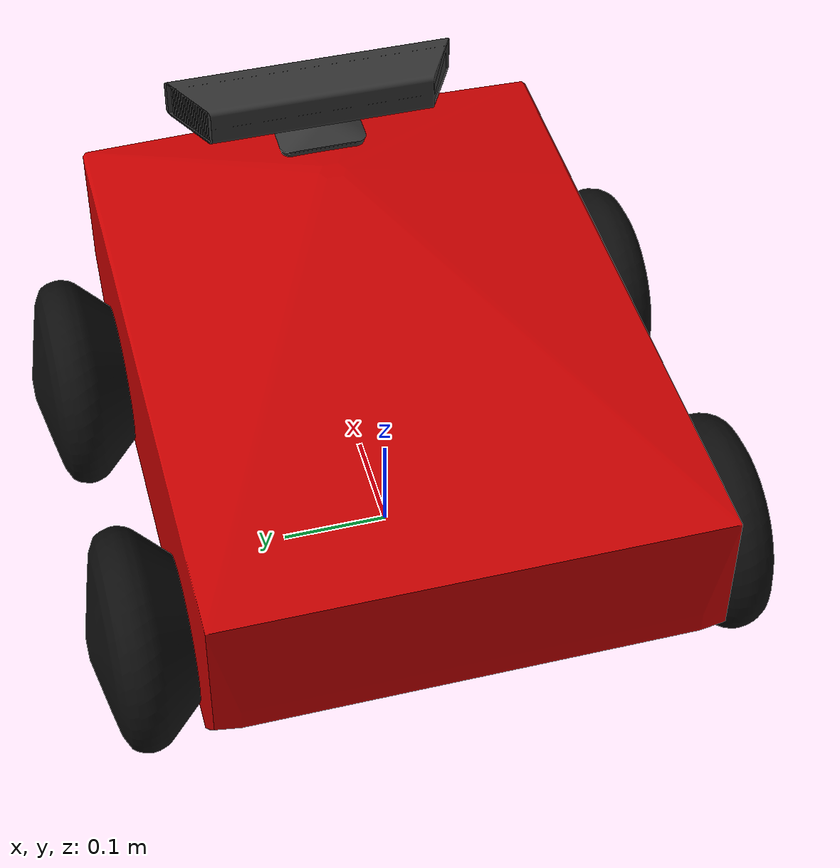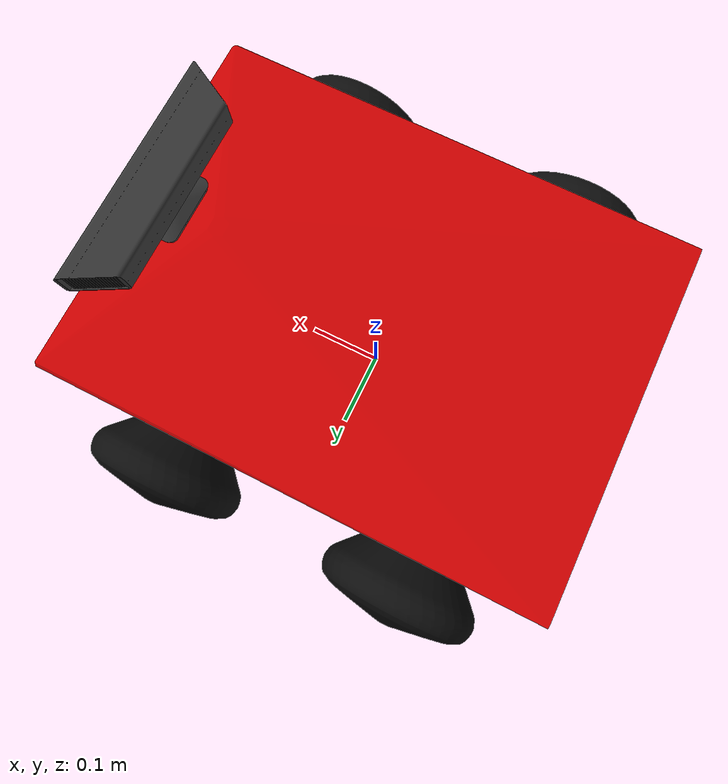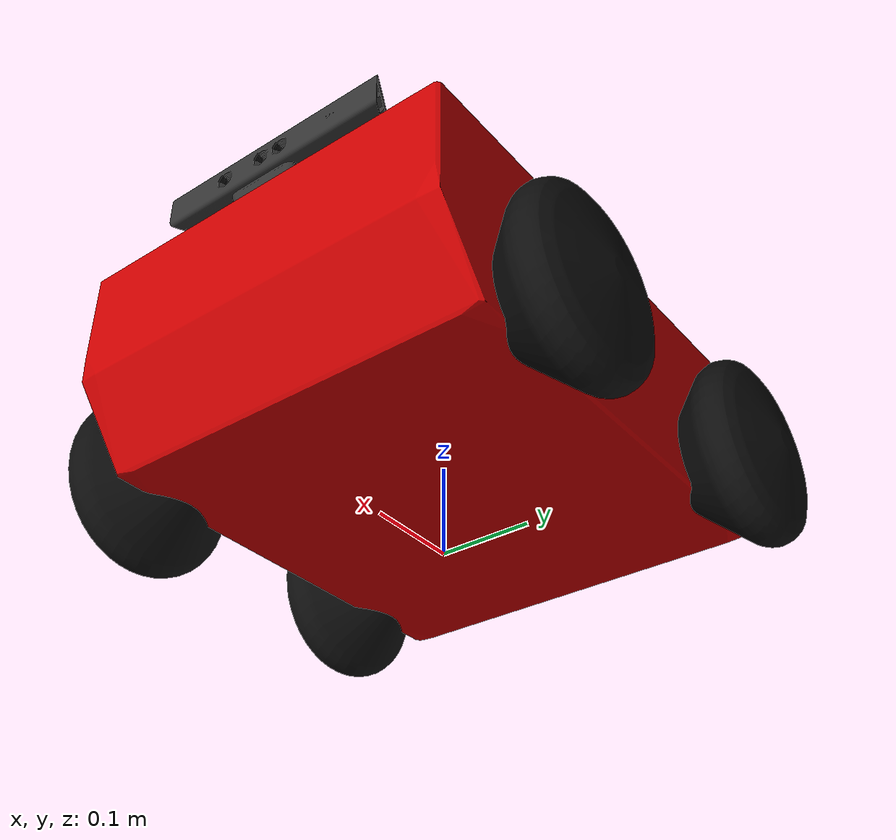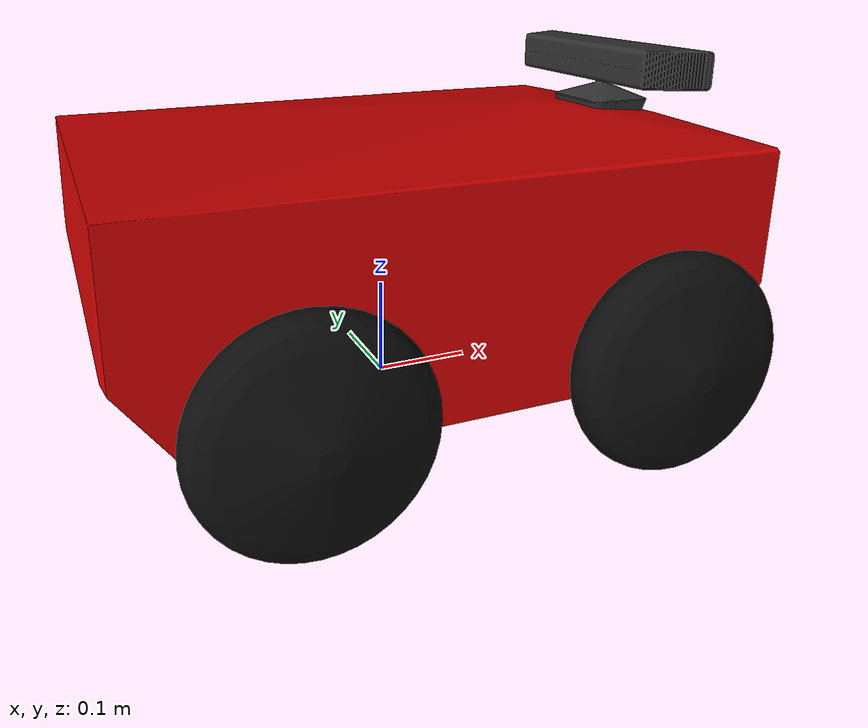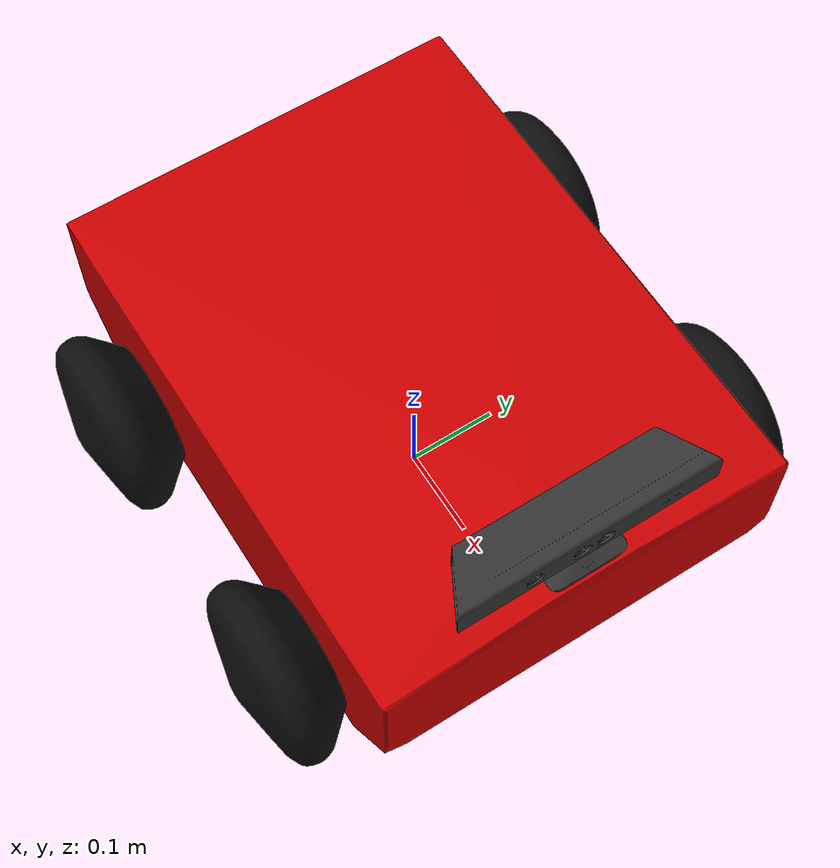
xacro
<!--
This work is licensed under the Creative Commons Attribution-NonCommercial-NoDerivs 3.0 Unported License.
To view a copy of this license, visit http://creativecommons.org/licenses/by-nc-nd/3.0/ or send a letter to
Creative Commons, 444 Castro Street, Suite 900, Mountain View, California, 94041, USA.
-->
<?xml version="1.0"?>

<robot xmlns:xacro="http://ros.org/wiki/xacro" name="canyonero">

		<xacro:include filename="$(find canyonero_description)/urdf/canyonero_properties.urdf.xacro"/>"
		<xacro:include filename="$(find canyonero_description)/urdf/canyonero_base.urdf.xacro"/>
		<xacro:include filename="$(find canyonero_description)/urdf/sensors/canyonero_kinect.urdf.xacro"/>
		<xacro:include filename="$(find canyonero_description)/urdf/sensors/canyonero_imu.urdf.xacro"/>
		<xacro:include filename="$(find canyonero_gazebo)/urdf/canyonero.gazebo.xacro"/>

		<!-- Base -->
		<xacro:wheeled_base name="base"/>

		<!-- 3D sensor -->
		<xacro:sensor_kinect parent="base_link"/>

		<!-- IMU -->
		<xacro:imu_sensor parent="base_link"/>

		<!-- Gazebo -->
		<xacro:canyonero_robot_gazebo/>

</robot>

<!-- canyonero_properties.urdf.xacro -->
<robot xmlns:xacro="http://ros.org/wiki/xacro">

	<!-- common properties -->
	<xacro:property name="PI"	value="3.1415926535897931"/>
	<material name="Red">
    <color rgba="0.8 0.0 0.0 1.0"/>
  </material>
  <material name="Black">
    <color rgba="0.05 0.05 0.05 1.0"/>
  </material>
  <material name="DarkGrey">
   <color rgba="0.2 0.2 0.2 1.0"/>
 </material>

	<!-- base properties -->
	<!-- robot's elevation from the ground -->
	<xacro:property name="rob_pos_Z" value="0.167"/>
	<!-- wheel properties -->
	<xacro:property name="wheel_pos_X" value="0.162"/>
	<xacro:property name="wheel_pos_Y" value="0.165"/>
	<xacro:property name="wheel_pos_Z" value="0.068"/>
	<xacro:property name="wheel_torque" value="1.0"/>
	<xacro:property name="wheel_velocity" value="3.0"/>
	<xacro:property name="wheel_radius" value="0.20"/>

	<!-- kinect properties -->
	<!-- kinect position at the robot -->
	<xacro:property name="cam_pos_X" value="0.262" />
	<xacro:property name="cam_pos_Y" value="0.0" />
	<xacro:property name="cam_pos_Z" value="0.141" />
	<xacro:property name="cam_or_R" value="${PI / 2}" />
	<xacro:property name="cam_or_P" value="0.0" />
	<xacro:property name="cam_or_Y" value="${PI / 2}" />
	<!-- kinect cam position at the kinect itself -->
	<xacro:property name="cam_px" value="0.029" />
	<xacro:property name="cam_py" value="-0.01" />
	<xacro:property name="cam_pz" value="0.019" />
	<xacro:property name="cam_or" value="0.0" />
	<xacro:property name="cam_op" value="0.0" />
	<xacro:property name="cam_oy" value="0.0" />

	<!-- imu properties -->
	<xacro:property name="imu_pos_X" value="0.1885"/>
	<xacro:property name="imu_pos_Y" value="0.0"/>
	<xacro:property name="imu_pos_Z" value="0.108"/>
	<xacro:property name="imu_or_R" value="0.0"/>
	<xacro:property name="imu_or_P" value="0.0"/>
	<xacro:property name="imu_or_Y" value="${-PI / 2}"/>

</robot>

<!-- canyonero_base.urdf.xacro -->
<robot xmlns:xacro="http://ros.org/wiki/xacro">

	<xacro:include filename="$(find canyonero_description)/urdf/wheels/canyonero_wheel.urdf.xacro"/>

	<xacro:macro name= "wheeled_base" params = "name">
	<!-- BASE-FOOTPRINT -->
		<!-- base_footprint is a fictitious link(frame) that is on the ground right below base_link origin, navigation stack depends on this frame -->
		<link name = "${name}_footprint"/>

		<joint name = "${name}_footprint_joint" type = "fixed">
			<parent link = "${name}_footprint"/>
			<child link = "${name}_link"/>
			<origin xyz = "0 0 ${rob_pos_Z}" rpy = "0 0 0"/>
		</joint>

		<!-- BASE-LINK -->
	    <!--Actual body/chassis of the robot-->
		<link name = "${name}_link">
			<visual>
				<origin xyz = "0 0 0" rpy = "0 0 0"/>
				<geometry>
					<mesh filename = "package://canyonero_description/meshes/canyonero_plates.stl"/>
				</geometry>
				<material name="Red"/>
			</visual>
			<collision>
	      		<origin xyz = "0 0 0" rpy = "0 0 0"/>
	      		<geometry>
	        		<mesh filename = "package://canyonero_description/meshes/canyonero_plates_collision.stl"/>
	      		</geometry>
	    	</collision>
			<inertial>
	      		<origin xyz="0.023661 -0.000069 -0.036285" rpy="0 0 0" />
	      		<mass value="10"/>
	      		<inertia ixx="0.27658267" ixy="0.0" ixz="-0.02663389"
	               		 iyy="0.38926449" iyz="0.0"
	               		 izz="0.57775046"/>
	    </inertial>
		</link>

		<gazebo reference="${name}_link">
      <material value="Gazebo/Red"/>
    </gazebo>

		<!-- Wheels -->
	    <xacro:wheel sideX = "front" sideY = "left" positionX = "1.0" positionY = "1.0" reflect = "-1.0" axis_z = "1" parent = "${name}" torque="${wheel_torque}" velocity="${wheel_velocity}" radius="${wheel_radius}" />
	    <xacro:wheel sideX = "front" sideY = "right" positionX = "1.0" positionY = "-1.0" reflect = "1.0" axis_z = "-1" parent = "${name}" torque="${wheel_torque}" velocity="${wheel_velocity}" radius="${wheel_radius}"/>
	    <xacro:wheel sideX = "rear" sideY = "left" positionX = "-1.0" positionY = "1.0" reflect = "-1.0" axis_z = "1" parent = "${name}" torque="${wheel_torque}" velocity="${wheel_velocity}" radius="${wheel_radius}"/>
	    <xacro:wheel sideX = "rear" sideY = "right" positionX = "-1.0" positionY = "-1.0" reflect = "1.0" axis_z = "-1" parent = "${name}" torque="${wheel_torque}" velocity="${wheel_velocity}" radius="${wheel_radius}"/>

	</xacro:macro>

</robot>

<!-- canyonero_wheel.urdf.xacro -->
<robot xmlns:xacro = "http://ros.org/wiki/xacro">

	<xacro:macro name="wheel" params="sideY sideX positionY positionX reflect axis_z parent torque velocity radius">
	    <link name="wheel_${sideX}_${sideY}_link">
	    	<visual>
	        	<origin xyz = "0 0 0" rpy = "0 ${-PI / 2} 0"/>
	        	<geometry>
	          		<mesh filename="package://canyonero_description/meshes/canyonero_wheel.stl"/>
	        	</geometry>
	        	<material name="Black"/>
	      	</visual>
		    <inertial>
		    	<origin xyz="0.0 0.0 0.102638" rpy="0 0 0"/>
		        <mass value="1.419"/>
		        <inertia ixx="0.00305" ixy="0.0" ixz="0.0"
				        		 iyy="0.00305" iyz="0.0"
				             izz="0.00512"/>

		    </inertial>
	      	<collision>
	        	<origin xyz="0 0 0" rpy="0 ${-PI / 2} 0"/>
	        	<geometry>
	          		<mesh filename="package://canyonero_description/meshes/canyonero_wheel_collision.stl"/>
	        	</geometry>
	      	</collision>
	    </link>

	    <joint name="wheel_${sideX}_${sideY}_joint" type="continuous">
	    	<parent link="${parent}_link"/>
	      	<child link="wheel_${sideX}_${sideY}_link"/>
	      	<origin xyz="${wheel_pos_X * positionX} ${wheel_pos_Y * positionY} ${-wheel_pos_Z}" rpy="${(PI / 2) * reflect} 0 0"/>
	      	<axis xyz="0 0 ${axis_z}"/>
			<limit effort="${torque}" velocity="${velocity / radius}"/>
	    </joint>

			<transmission name="simple_trans">
			  <type>transmission_interface/SimpleTransmission</type>
			  <joint name="wheel_${sideX}_${sideY}_joint">
					<hardwareInterface>VelocityJointInterface</hardwareInterface>
			  </joint>
			  <actuator name="DC_motor">
					<mechanicalReduction>1</mechanicalReduction>
			  </actuator>
			</transmission>

			<gazebo reference="wheel_${sideX}_${sideY}_link">
				<mu1 value="0.75"/>
				<mu2 value="0.75"/>
				<!--kp value="10000000.0" /-->
				<!--kd value="1.0" /-->
				<fdir1 value="0 0 0"/>
				<material value="Gazebo/Black"/>
			</gazebo>

  	</xacro:macro>
</robot>

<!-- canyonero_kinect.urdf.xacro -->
<robot name="sensor_kinect" xmlns:xacro="http://ros.org/wiki/xacro">

	<!-- Parameterised in part by the values in canyonero_properties.urdf.xacro -->
  <xacro:macro name="sensor_kinect" params="parent">
  	<joint name="camera_joint" type="fixed">
  		<origin xyz="${cam_pos_X} ${cam_pos_Y} ${cam_pos_Z}" rpy="0 0 0"/>
  		<parent link="${parent}"/>
  		<child link="camera_link"/>
  	</joint>
  	<link name="camera_link">
      <visual>
       <origin xyz="0 0 0" rpy="${cam_or_R} ${cam_or_P} ${cam_or_Y}"/>
        <geometry>
         <mesh filename="package://canyonero_description/meshes/kinect.stl" scale="0.1 0.1 0.1"/>
        </geometry>
        <material name="DarkGrey" />
      </visual>
  	  <collision>
        <origin xyz="0.0 0.0 0.0" rpy="0 0 0"/>
  	    <geometry>
  	      <box size="0.07271 0.27794 0.073"/>
  	    </geometry>
  	  </collision>
      <inertial>
        <mass value="0.564" />
        <origin xyz="0 0 0" />
        <inertia ixx="0.003881243" ixy="0.0" ixz="0.0"
                 iyy="0.000498940" iyz="0.0"
                 izz="0.003879257" />
      </inertial>
      <gazebo reference="camera_link">
        <material>Gazebo/Black</material>
      </gazebo>
    </link>

    <!-- RGB camera -->
    <joint name="camera_rgb_joint" type="fixed">
      <origin xyz="${cam_px} ${cam_py} ${cam_pz}" rpy="${cam_or} ${cam_oy} ${cam_op}"/>
      <parent link="camera_link"/>
      <child link="camera_rgb_frame" />
    </joint>
    <link name="camera_rgb_frame"/>

    <joint name="camera_rgb_optical_joint" type="fixed">
      <origin xyz="0 0 0" rpy="${-PI/2} 0 ${-PI/2}" />
      <parent link="camera_rgb_frame" />
      <child link="camera_rgb_optical_frame" />
    </joint>
    <link name="camera_rgb_optical_frame"/>

    <!-- Depth camera -->
    <joint name="camera_depth_joint" type="fixed">
	  	<origin xyz="0 ${2.4 * -cam_py} 0" rpy="0 0 0" />
	  	<parent link="camera_rgb_frame" />
	  	<child link="camera_depth_frame" />
		</joint>
		<link name="camera_depth_frame"/>

		<joint name="camera_depth_optical_joint" type="fixed">
	  	<origin xyz="0 0 0" rpy="${-PI/2} 0 ${-PI/2}" />
	  	<parent link="camera_depth_frame" />
	  	<child link="camera_depth_optical_frame" />
		</joint>
		<link name="camera_depth_optical_frame"/>

    <gazebo reference="camera_link">
      <sensor type="depth" name="camera">
        <always_on>true</always_on>
        <update_rate>20.0</update_rate>
        <camera>
          <horizontal_fov>${60.0*PI/180.0}</horizontal_fov>
          <image>
            <format>R8G8B8</format>
            <width>640</width>
            <height>480</height>
          </image>
          <clip>
            <near>0.05</near>
            <far>8.0</far>
          </clip>
        </camera>
        <plugin name="kinect_camera_controller" filename="libgazebo_ros_openni_kinect.so">
          <cameraName>camera</cameraName>
          <alwaysOn>true</alwaysOn>
          <updateRate>10</updateRate>
          <imageTopicName>rgb/image_raw</imageTopicName>
          <depthImageTopicName>depth/image_raw</depthImageTopicName>
          <pointCloudTopicName>depth/points</pointCloudTopicName>
          <cameraInfoTopicName>rgb/camera_info</cameraInfoTopicName>
          <depthImageCameraInfoTopicName>depth/camera_info</depthImageCameraInfoTopicName>
          <frameName>camera_depth_optical_frame</frameName>
          <baseline>0.1</baseline>
          <distortion_k1>0.0</distortion_k1>
          <distortion_k2>0.0</distortion_k2>
          <distortion_k3>0.0</distortion_k3>
          <distortion_t1>0.0</distortion_t1>
          <distortion_t2>0.0</distortion_t2>
          <pointCloudCutoff>0.4</pointCloudCutoff>
        </plugin>
      </sensor>
    </gazebo>

	</xacro:macro>
</robot>

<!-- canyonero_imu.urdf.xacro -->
<robot xmlns:xacro="http://ros.org/wiki/xacro">

  <xacro:macro name="imu_sensor" params="parent">

    <joint name="imu_joint" type="fixed">
      <origin xyz = "${imu_pos_X} ${imu_pos_Y} ${imu_pos_Z}" rpy = "${imu_or_R} ${imu_or_P} ${imu_or_Y}"/>
      <parent link="${parent}"/>
      <child link="imu_link"/>
    </joint>
    <link name="imu_link">
      <visual>
        <origin xyz = "0 0 0" rpy = "0 0 0" />
        <geometry>
          <mesh filename = "package://canyonero_description/meshes/9dof_razor_imu.stl" scale="0.1 0.1 0.1"/>
        </geometry>
        <material name="Red"/>
      </visual>
      <collision>
        <origin xyz="0.0 0.0 0.0" rpy="0 0 0"/>
        <geometry>
          <box size="0.27 0.40 0.5"/>
        </geometry>
      </collision>
      <inertial>
        <mass value="0.01"/>
        <origin xyz="0 0 0"/>
        <inertia ixx="0.0000001" ixy="0.0" ixz="0.0" iyy="0.0000001" iyz="0.0" izz="0.0000001"/>
      </inertial>
    </link>
  </xacro:macro>

</robot>
